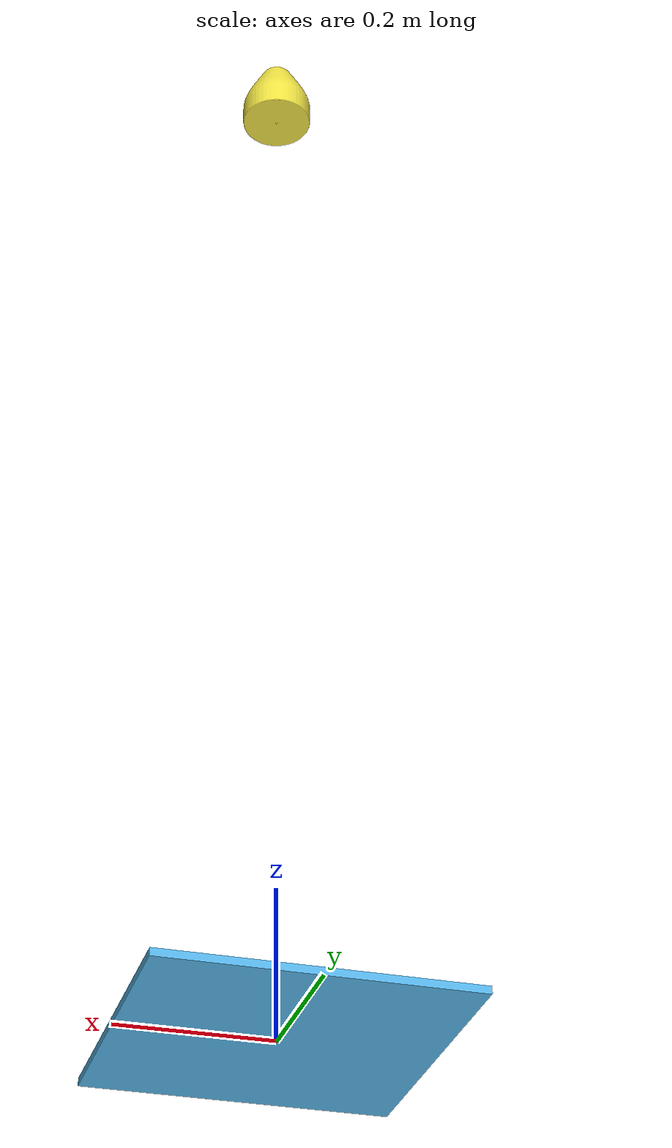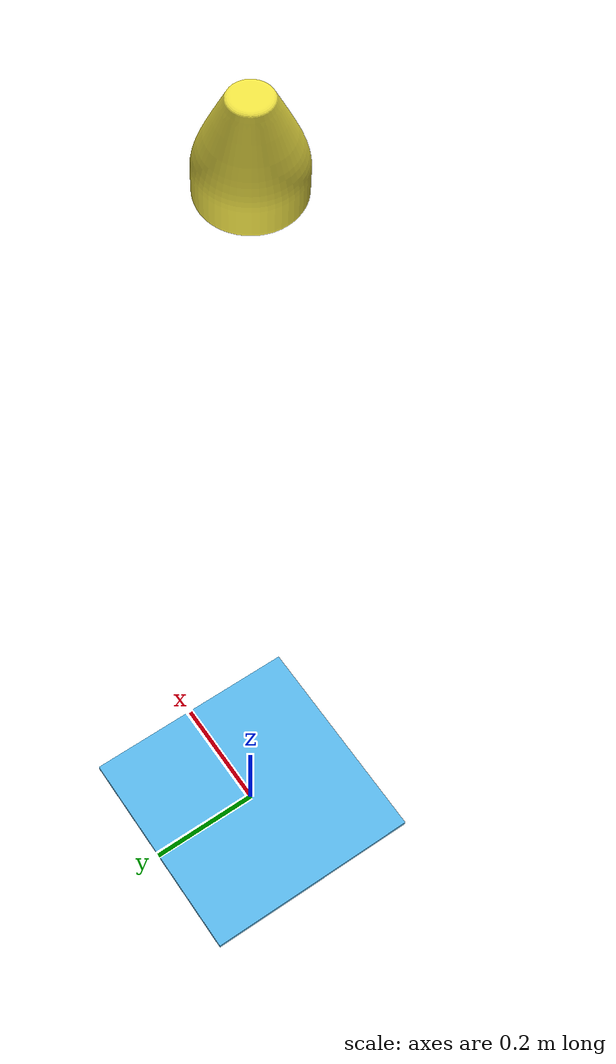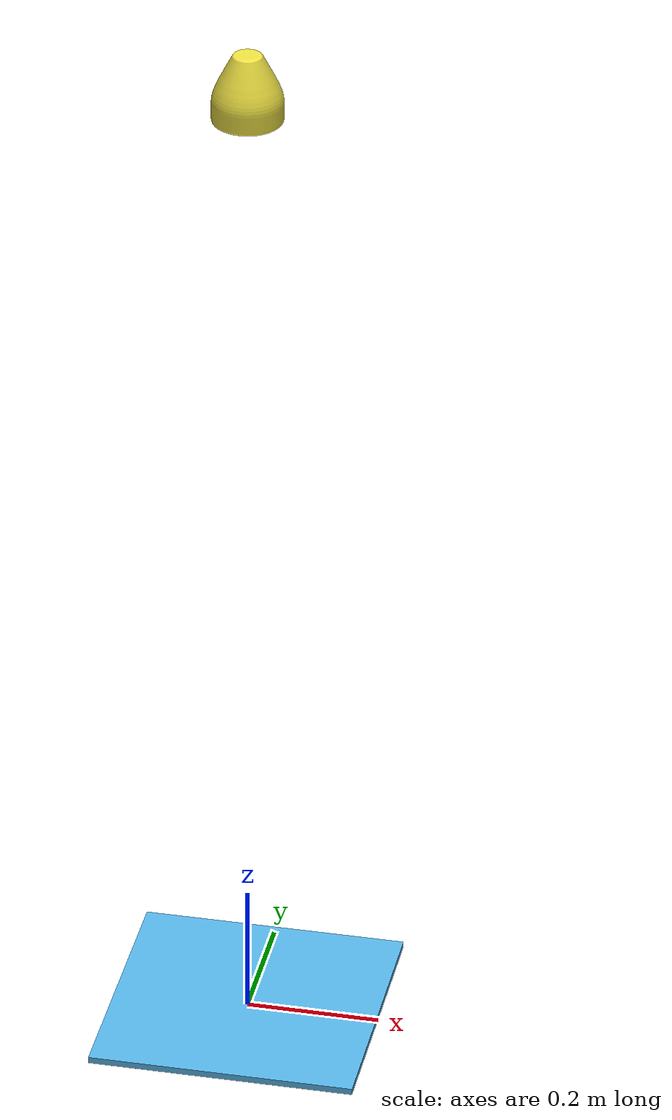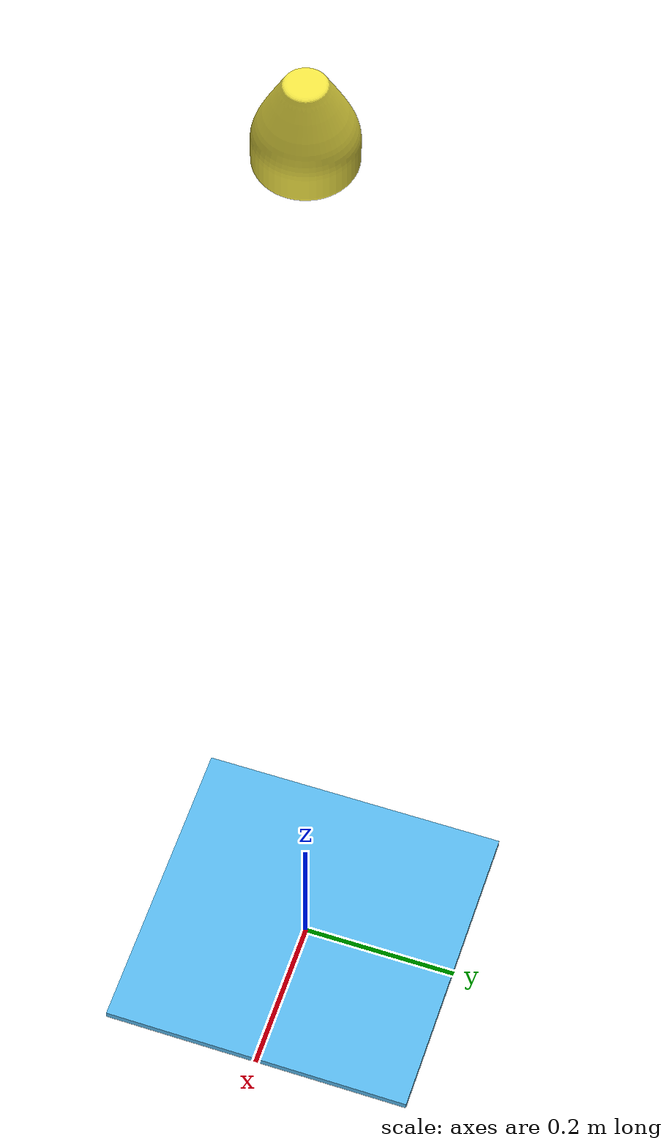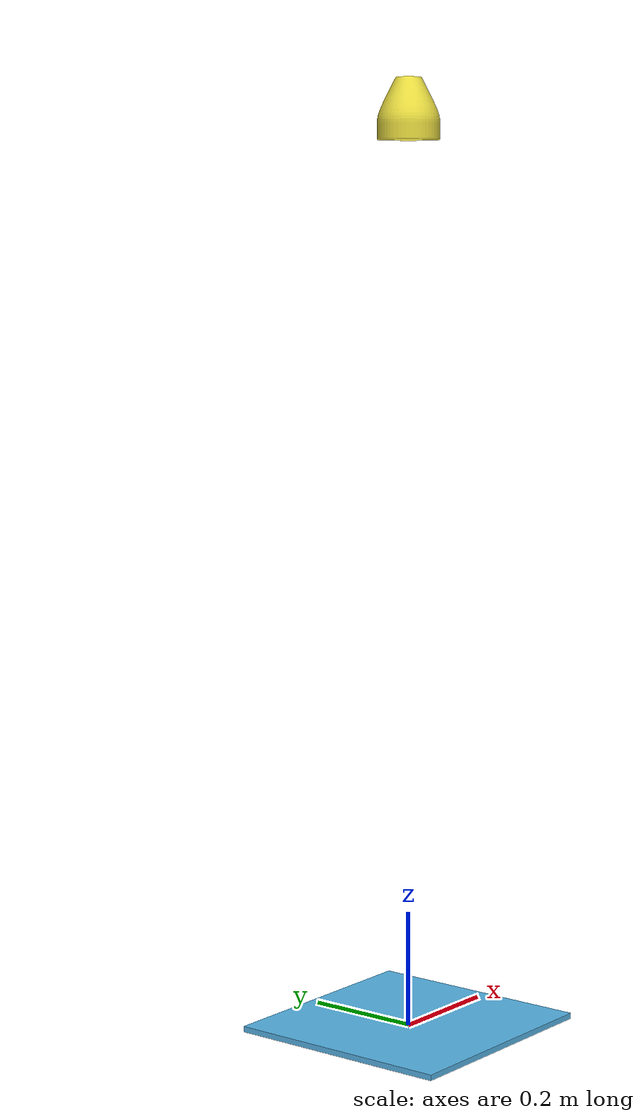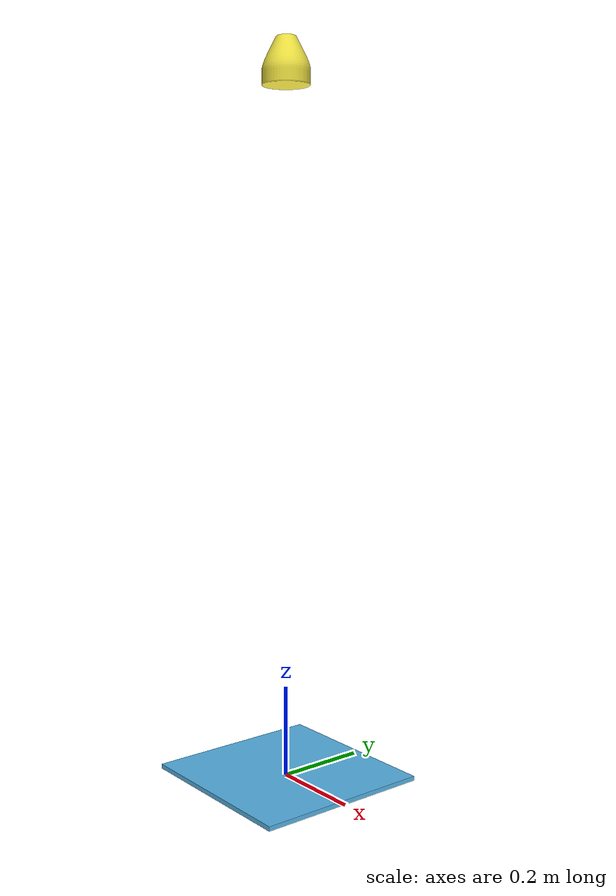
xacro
<?xml version="1.0"?>
<robot name="pal" xmlns:xacro="http://www.ros.org/wiki/xacro">

  <xacro:include filename="$(find gazebo_ros_pal)/xacro/inertia.xacro" />
  <xacro:include filename="$(find gazebo_ros_pal)/xacro/depth.xacro" /> <!-- multiple depth cameras with pcl and depth/raw image outputs -->
  <xacro:include filename="$(find gazebo_ros_pal)/xacro/laser.xacro" /> <!-- single gpu ray block laser as if it were a 3D lidar, no image -->

  <link name="base_footprint"/>

  <joint name="footprint_joint" type="fixed">
    <parent link="base_footprint"/>
    <child link="base_link"/>
    <origin rpy="0 0 0" xyz="0 0 0"/>
  </joint>

  <link name="base_link">
    <visual>
      <origin rpy="0 0 0 " xyz="0 0 0.005"/>
      <geometry>
          <box size="0.4 0.4 0.01"/>
      </geometry>
    </visual>
    <collision>
      <origin rpy="0 0 0 " xyz="0 0 0.005"/>
      <geometry>
        <box size="0.4 0.4 0.01"/>
      </geometry>
    </collision>
    <inertial>
      <origin rpy="0 0 0 " xyz="0 0 0.005"/>
      <geometry>
        <box size="0.4 0.4 0.01"/>
      </geometry>
      <mass value="100"/>
      <xacro:box_inertia m="100" x="0.4" y="0.4" z="0.01"/>
    </inertial>
  </link>

  <link name="laser_link"/>
  <joint name="laser_joint" type="fixed">
    <parent link="base_footprint"/>
    <child link="laser_link"/>
    <origin rpy="0 0 0" xyz="0 0 0"/>
  </joint>

  <!-- OPTION [A] using depth camera class -->
  <xacro:pal_depth sensor_name="pal" parent_link="base_link" rate="10">
    <origin rpy="0 0 0" xyz="0 0 1.50"/>
  </xacro:pal_depth>

  <!-- OPTION [B] using gpu laser class -->
  <xacro:pal_pcl sensor_name="pal_ray" parent_link="base_link" rate="10">
    <origin rpy="0 0 0 " xyz="0 0 1.50"/>
  </xacro:pal_pcl>

</robot>

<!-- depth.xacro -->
<robot xmlns:xacro="http://www.ros.org/wiki/xacro">

<xacro:macro name="pal_depth" params="sensor_name parent_link rate *origin">

  <joint name="${sensor_name}_joint" type="fixed">
    <parent link="${parent_link}"/>
    <child link="${sensor_name}"/>
    <xacro:insert_block name="origin"/>
  </joint>

  <link name="${sensor_name}">
      <visual>
          <origin rpy="0 0 0" xyz="0 0 0"/> <!-- gazebo camera transform compensation -->
          <geometry>
              <mesh filename="package://gazebo_ros_pal/meshes/pal.STL"/>
          </geometry>
      </visual>
      <collision>
        <origin rpy="0 0 0" xyz="0 0 0"/>
          <geometry>
              <mesh filename="package://gazebo_ros_pal/meshes/pal.STL"/>
          </geometry>
      </collision>
      <inertial>
        <origin
          xyz="-8.3767E-19 0.039154 7.7658E-09"
          rpy="0 0 0" />
        <mass
          value="0.61118" />
        <inertia
          ixx="0.00073089"
          ixy="6.9777E-21"
          ixz="2.8195E-26"
          iyy="0.00067219"
          iyz="3.0805E-09"
          izz="0.00073089" />
      </inertial>
  </link>

  <link name="${sensor_name}_optical_front"/>
  <joint name="${sensor_name}_front_joint" type="fixed">
    <parent link="${sensor_name}"/>
    <child link="${sensor_name}_optical_front"/>
    <origin rpy="0 0 0" xyz="0 0 0.05"/>
  </joint>

  <gazebo reference="${sensor_name}_optical_front">
    <sensor type="depth" name="${sensor_name}_front">
      <always_on>true</always_on>
      <update_rate>${rate}</update_rate>
      <camera>
          <horizontal_fov>${pi/2}</horizontal_fov>
          <vertical_fov>1.9</vertical_fov> <!-- in reality VFOV is assymetric to the floor plane -->
          <image>
              <format>R8G8B8</format>
              <width>157</width>
              <height>190</height>
          </image>
          <clip>
              <near>0.1</near>
              <far>10.0</far>
          </clip>
      </camera>
      <plugin name="${sensor_name}" filename="libgazebo_ros_pal_openni_kinect.so"> <!-- libgazebo_ros_depth_camera.so depth images won't show in rviz -->
          <alwaysOn>true</alwaysOn>
          <updateRate>${rate}</updateRate>
          <cameraName>${sensor_name}_front</cameraName>
          <depthImageTopicName>image_depth</depthImageTopicName>
          <depthImageCameraInfoTopicName>camera_info</depthImageCameraInfoTopicName>
          <pointCloudTopicName>${sensor_name}_front/points_raw</pointCloudTopicName>
          <frameName>${sensor_name}_optical_front</frameName>
          <pointCloudCutoff>0.05</pointCloudCutoff>
          <distortionK1>0</distortionK1> <!-- let's pretend that there are no distortions -->
          <distortionK2>0</distortionK2>
          <distortionK3>0</distortionK3>
          <distortionT1>0</distortionT1>
          <distortionT2>0</distortionT2>
      </plugin>
    </sensor>
  </gazebo>

  </xacro:macro>

</robot>

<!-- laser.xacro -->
<robot xmlns:xacro="http://www.ros.org/wiki/xacro">

<xacro:macro name="pal_pcl" params="sensor_name parent_link rate *origin">

  <joint name="${sensor_name}_joint" type="fixed">
    <parent link="${parent_link}"/>
    <child link="${sensor_name}"/>
    <xacro:insert_block name="origin"/>
  </joint>

  <link name="${sensor_name}">
      <visual>
          <origin rpy="0 0 0" xyz="0 0 0"/>
          <geometry>
              <mesh filename="package://gazebo_ros_pal/meshes/pal.STL"/>
          </geometry>
      </visual>
      <collision>
          <origin rpy="0 0 0" xyz="0 0 0"/>
          <geometry>
              <mesh filename="package://gazebo_ros_pal/meshes/pal.STL"/>
          </geometry>
      </collision>
      <inertial>
        <origin
          xyz="-8.3767E-19 0.039154 7.7658E-09"
          rpy="0 0 0" />
        <mass
          value="0.61118" />
        <inertia
          ixx="0.00073089"
          ixy="6.9777E-21"
          ixz="2.8195E-26"
          iyy="0.00067219"
          iyz="3.0805E-09"
          izz="0.00073089" />
      </inertial>
  </link>

  <gazebo reference="${sensor_name}">
    <sensor name="${sensor_name}" type="ray">
      <pose>0.0 0.0 0.0 0.0 0.0 0.0</pose>
      <ray>
        <scan>
          <horizontal>
            <samples>180</samples>
            <resolution>1.0</resolution>
            <min_angle>-3.14</min_angle>
            <max_angle>3.14</max_angle>
          </horizontal>
          <vertical>
            <samples>55</samples>
            <resolution>1.0</resolution>
            <min_angle>-0.9</min_angle>
            <max_angle>1.0</max_angle>
          </vertical>
        </scan>
        <range>
          <min>0.05</min>
          <max>10.0</max>
        </range>
      </ray>
      <plugin name="blocklaser" filename="libgazebo_ros_block_laser.so">
        <gaussianNoise>0.00</gaussianNoise>
        <alwaysOn>true</alwaysOn>
        <updateRate>${rate}</updateRate>
        <topicName>${sensor_name}/point_cloud</topicName>
        <frameName>${sensor_name}</frameName>
        <hokuyoMinIntensity>101</hokuyoMinIntensity>
      </plugin>
      <always_on>true</always_on>
      <update_rate>${rate}</update_rate>
    </sensor>
  </gazebo>

  </xacro:macro>

</robot>
